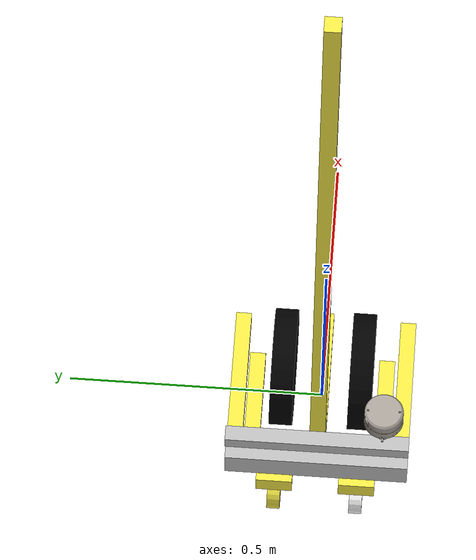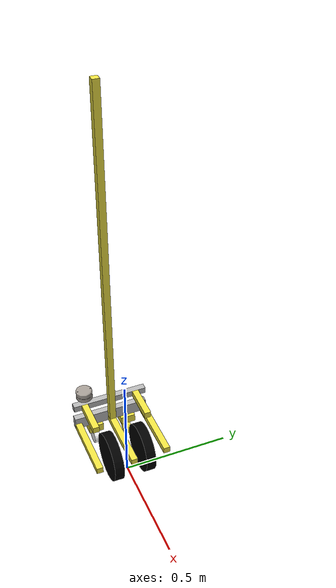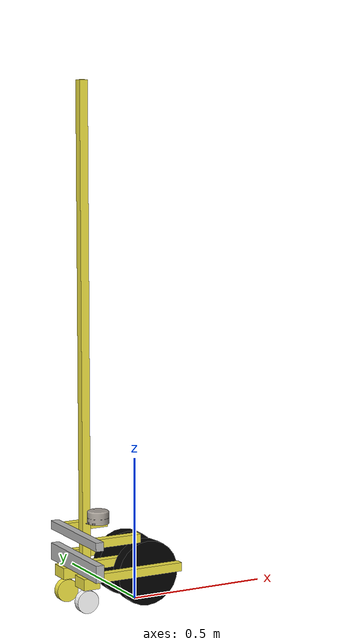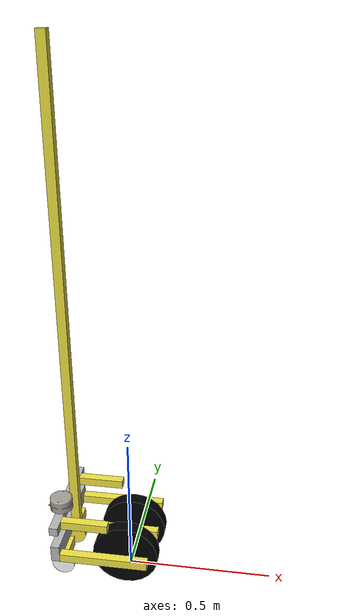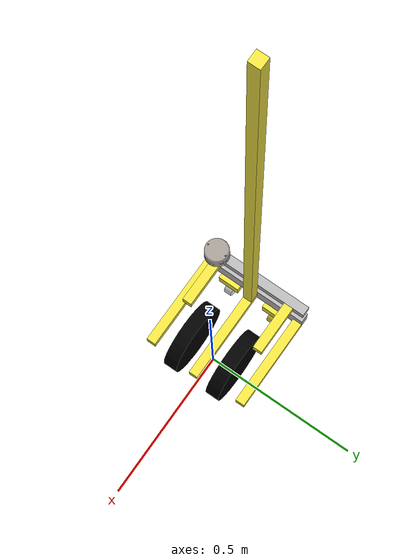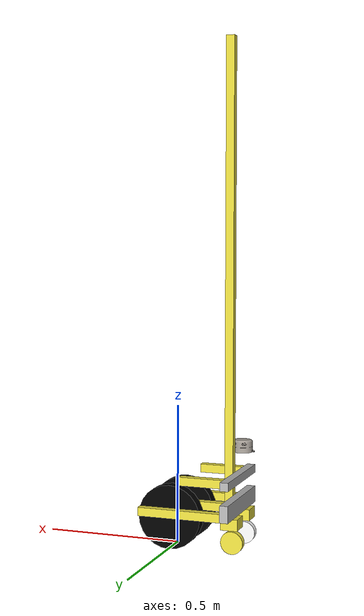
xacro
<?xml version="1.0"?>
<robot xmlns:xacro="http://www.ros.org/wiki/xacro" name="esdlbot_V1" >
  <joint name="laser_base_joint" type="fixed">
    <parent link="base_link" />
    <child link = "base_laser" />
    <origin xyz="-0.205 -0.125 0.18" rpy="0.0 0.0 0.0" />
  </joint>

  <link name="usb_cam_slide"/>

  <joint name="usb_cam_slide_joint" type="prismatic">
    <parent link="base_link" />
    <child link = "usb_cam_slide" />
    <limit effort="50.0" lower="0.0" upper="1.5" velocity="0.5"/>
    <axis xyz="0 0 1"/>
    <origin xyz="-0.115 0.0 0.3" rpy="0.0 0.0 0.0" />
  </joint>

  <joint name="usb_cam_joint" type="fixed">
    <parent link="usb_cam_slide" />
    <child link = "usb_cam" />
    <origin xyz="0.0 0.0 0.0" rpy="3.14 0.0 1.57" />
  </joint>

  <link name="usb_cam" />

  <!-- robot -->
  <xacro:include filename="$(find my_car)/urdf/esdlbot_V1_base.urdf" />

  <!-- lidar -->
  <xacro:include filename="$(find ydlidar_ros)/urdf/ydlidar.urdf" />

</robot>

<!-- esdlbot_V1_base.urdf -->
<robot name="esdlbot_V1_base">

  <material name="black">
    <color rgba="0 0 0 1"/>
  </material>
  <material name="gray">
    <color rgba="0.72 0.72 0.72 1"/>
  </material>
  <material name="white">
    <color rgba="1 1 1 1"/>
  </material>

  <link name="base_footprint"/>

  <joint name="model_joint" type="fixed">
    <parent link="base_footprint" />
    <child link = "base_link" />
    <origin xyz="0.0 0.0 0.144" rpy="0.0 0.0 0.0" />
  </joint>

  <link name="base_link">
    <!-- Main body -->
    <visual>
      <geometry>
        <box size="0.03 0.353 0.06"/>
      </geometry>
      <origin xyz="-0.225 0.0 0.015" rpy="0.0 0.0 0.0"/>
      <material name="gray"/>
    </visual>

    <!-- right body -->
    <visual>
      <geometry>
        <box size="0.3 0.03 0.03"/>
      </geometry>
      <origin xyz="-0.06 -0.1615 0.0" rpy="0.0 0.0 0.0"/>
    </visual>

    <!-- left body -->
    <visual>
      <geometry>
        <box size="0.3 0.03 0.03"/>
      </geometry>
      <origin xyz="-0.06 0.1615 0.0" rpy="0.0 0.0 0.0"/>
    </visual>

    <!-- middle body -->
    <visual>
      <geometry>
        <box size="0.31 0.03 0.03"/>
      </geometry>
      <origin xyz="-0.055 0.0 0.0" rpy="0.0 0.0 0.0"/>
    </visual>

    <!-- Left back wheel base -->
    <visual>
      <geometry>
        <box size="0.06 0.07 0.04"/>
      </geometry>
      <origin xyz="-0.225 0.08 -0.035" rpy="0.0 0.0 0.0"/>
    </visual>

    <!-- Right back wheel base -->
    <visual>
      <geometry>
        <box size="0.06 0.07 0.04"/>
      </geometry>
      <origin xyz="-0.225 -0.08 -0.035" rpy="0.0 0.0 0.0"/>
    </visual>

    <!-- Left back wheel -->
    <visual>
      <geometry>
        <cylinder length="0.025" radius="0.04"/>
      </geometry>
      <origin xyz="-0.228 -0.08 -0.104" rpy="1.5708 0.0 0.0"/>
      <material name="white"/>
    </visual>

    <!-- Right back wheel -->
    <visual>
      <geometry>
        <cylinder length="0.025" radius="0.04"/>
      </geometry>
      <origin xyz="-0.228 0.08 -0.104" rpy="1.5708 0.0 0.0"/>
    </visual>

    <!-- Raise column-->
    <visual>
      <geometry>
        <box size="0.03 0.03 1.65"/>
      </geometry>
      <origin xyz="-0.195 0.0 0.84" rpy="0.0 0.0 0.0"/>
    </visual>

    <!-- 2F Main body -->
    <visual>
      <geometry>
        <box size="0.03 0.353 0.03"/>
      </geometry>
      <origin xyz="-0.225 0.0 0.11" rpy="0.0 0.0 0.0"/>
      <material name="gray"/>
    </visual>

    <!-- 2F right body -->
    <visual>
      <geometry>
        <box size="0.16 0.03 0.03"/>
      </geometry>
      <origin xyz="-0.13 -0.125 0.11" rpy="0.0 0.0 0.0"/>
    </visual>

    <!-- 2F left body -->
    <visual>
      <geometry>
        <box size="0.16 0.03 0.03"/>
      </geometry>
      <origin xyz="-0.13 0.125 0.11" rpy="0.0 0.0 0.0"/>
    </visual>

  </link>

  <joint name="Left_wheel_joint" type="continuous">
    <parent link="base_link" />
    <child link = "left_wheel" />
    <origin xyz="0.0 0.0765 -0.03" rpy="0.0 0.0 0.0" />
    <axis xyz="0 1 0"/>
  </joint>

  <link name="left_wheel">
    <visual>
      <geometry>
        <cylinder length="0.045" radius="0.114"/>
      </geometry>
      <origin xyz="0.0 0.0 0.0" rpy="1.5708 0.0 0.0"/>
      <material name="black"/>
    </visual>
  </link>

  <joint name="Right_wheel_joint" type="continuous">
    <parent link="base_link" />
    <child link = "Right_wheel" />
    <origin xyz="0.0 -0.0765 -0.03" rpy="0.0 0.0 0.0" />
    <axis xyz="0 1 0"/>
  </joint>

  <link name="Right_wheel">
    <visual>
      <geometry>
        <cylinder length="0.045" radius="0.114"/>
      </geometry>
      <origin xyz="0.0 0.0 0.0" rpy="1.5708 0.0 0.0"/>
      <material name="black"/>
    </visual>
  </link>

  <joint name="Imu_joint" type="fixed">
    <parent link="base_link" />
    <child link = "imu_frame" />
    <origin xyz="-0.225 0.045 0.06" rpy="0.0 0.0 0.0" />
  </joint>

  <link name="imu_frame" />

</robot>

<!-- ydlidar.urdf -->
<robot
  name="ydlidar_ros">
  <link
    name="base_laser">
    <inertial>
      <origin
        xyz="-0.00029774 0.0066667 0.00013047"
        rpy="0 0 0" />
      <mass
        value="0.15717" />
      <inertia
        ixx="6.7885E-05"
        ixy="-1.3987E-07"
        ixz="-8.1554E-07"
        iyy="0.00013173"
        iyz="-9.0932E-08"
        izz="7.1972E-05" />
    </inertial>
    <visual>
      <origin
        xyz="0 0 0"
        rpy="0 0 0" />
      <geometry>
        <mesh
          filename="package://ydlidar_ros/meshes/ydlidar.dae" />
      </geometry>
      <material
        name="">
        <color
          rgba="0.64706 0.61961 0.58824 1" />
      </material>
    </visual>
    <collision>
      <origin
        xyz="0 0 0"
        rpy="0 0 0" />
      <geometry>
        <mesh
          filename="package://ydlidar_ros/meshes/ydlidar.dae" />
      </geometry>
    </collision>
  </link>
  <link
    name="laser_frame">
    <inertial>
      <origin
        xyz="-0.00036659 0.00064155 -0.00027052"
        rpy="0 0 0" />
      <mass
        value="0.25482" />
      <inertia
        ixx="8.9194E-05"
        ixy="1.8116E-07"
        ixz="3.6435E-08"
        iyy="0.00018279"
        iyz="2.423E-07"
        izz="0.00011103" />
    </inertial>
  </link>
  <joint
    name="laser_joint"
    type="fixed">
    <origin
      xyz="0 0 0.03172"
      rpy="0 0 0" />
    <parent
      link="base_laser" />
    <child
      link="laser_frame" />
    <axis
      xyz="0 0 0" />
  </joint>
</robot>
